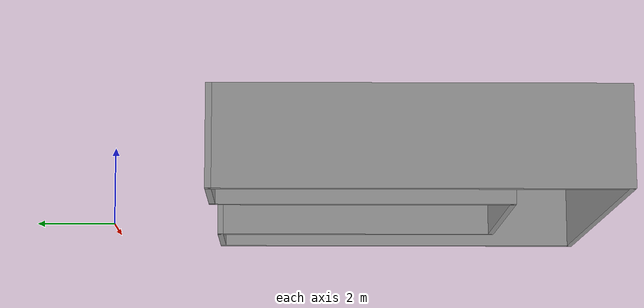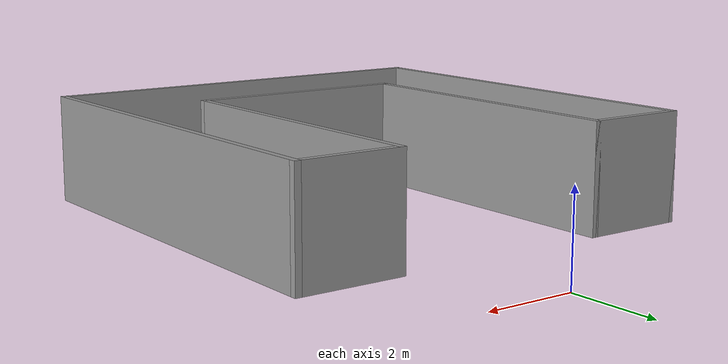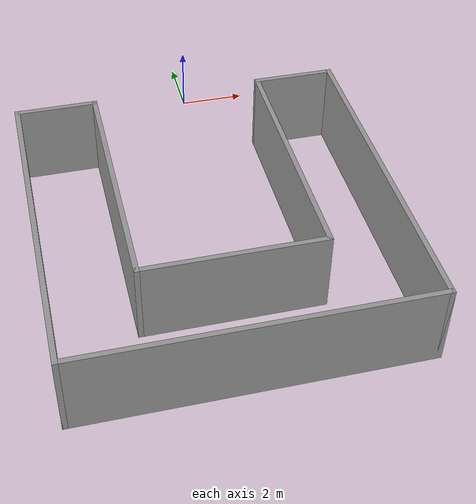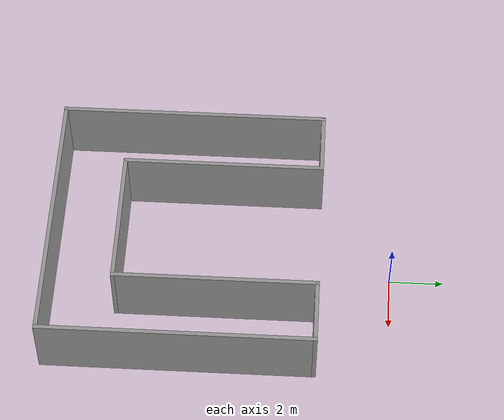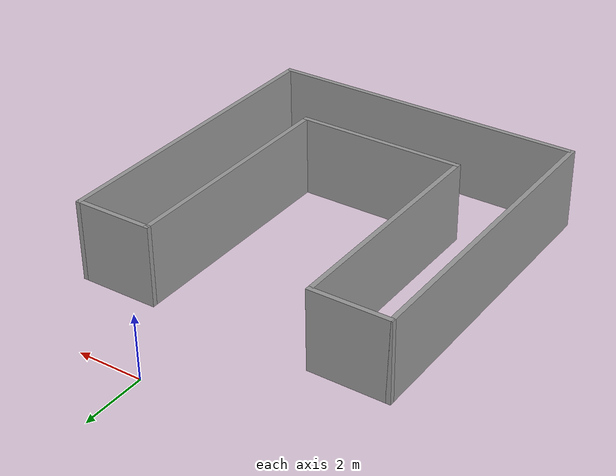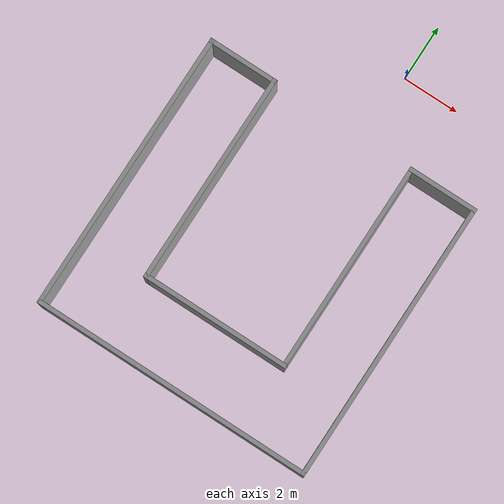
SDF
<?xml version='1.0'?>
<sdf version='1.6'>
  <model name='mybuilding'>
    <pose frame=''>-0.745 -6.3075 0 0 -0 0</pose>
    <link name='Wall_0'>
      <collision name='Wall_0_Collision'>
        <geometry>
          <box>
            <size>2.5 0.15 2.5</size>
          </box>
        </geometry>
        <pose frame=''>0 0 1.25 0 -0 0</pose>
      </collision>
      <visual name='Wall_0_Visual'>
        <pose frame=''>0 0 1.25 0 -0 0</pose>
        <geometry>
          <box>
            <size>2.5 0.15 2.5</size>
          </box>
        </geometry>
        <material>
          <script>
            <uri>file://media/materials/scripts/gazebo.material</uri>
            <name>Gazebo/Grey</name>
          </script>
          <ambient>1 1 1 1</ambient>
        </material>
        <meta>
          <layer>0</layer>
        </meta>
      </visual>
      <pose frame=''>-3.75 3.6175 0 0 -0 0</pose>
    </link>
    <link name='Wall_12'>
      <collision name='Wall_12_Collision'>
        <geometry>
          <box>
            <size>7.5 0.15 2.5</size>
          </box>
        </geometry>
        <pose frame=''>0 0 1.25 0 -0 0</pose>
      </collision>
      <visual name='Wall_12_Visual'>
        <pose frame=''>0 0 1.25 0 -0 0</pose>
        <geometry>
          <box>
            <size>7.5 0.15 2.5</size>
          </box>
        </geometry>
        <material>
          <script>
            <uri>file://media/materials/scripts/gazebo.material</uri>
            <name>Gazebo/Grey</name>
          </script>
          <ambient>1 1 1 1</ambient>
        </material>
        <meta>
          <layer>0</layer>
        </meta>
      </visual>
      <pose frame=''>2.575 -0.0575 0 0 -0 -1.5708</pose>
    </link>
    <link name='Wall_13'>
      <collision name='Wall_13_Collision'>
        <geometry>
          <box>
            <size>5.3 0.15 2.5</size>
          </box>
        </geometry>
        <pose frame=''>0 0 1.25 0 -0 0</pose>
      </collision>
      <visual name='Wall_13_Visual'>
        <pose frame=''>0 0 1.25 0 -0 0</pose>
        <geometry>
          <box>
            <size>5.3 0.15 2.5</size>
          </box>
        </geometry>
        <material>
          <script>
            <uri>file://media/materials/scripts/gazebo.material</uri>
            <name>Gazebo/Grey</name>
          </script>
          <ambient>1 1 1 1</ambient>
        </material>
        <meta>
          <layer>0</layer>
        </meta>
      </visual>
      <pose frame=''>0 -3.7325 0 0 -0 3.14159</pose>
    </link>
    <link name='Wall_4'>
      <collision name='Wall_4_Collision'>
        <geometry>
          <box>
            <size>10 0.15 2.5</size>
          </box>
        </geometry>
        <pose frame=''>0 0 1.25 0 -0 0</pose>
      </collision>
      <visual name='Wall_4_Visual'>
        <pose frame=''>0 0 1.25 0 -0 0</pose>
        <geometry>
          <box>
            <size>10 0.15 2.5</size>
          </box>
        </geometry>
        <material>
          <script>
            <uri>file://media/materials/scripts/gazebo.material</uri>
            <name>Gazebo/Grey</name>
          </script>
          <ambient>1 1 1 1</ambient>
        </material>
        <meta>
          <layer>0</layer>
        </meta>
      </visual>
      <pose frame=''>-4.925 -1.3075 0 0 -0 -1.5708</pose>
    </link>
    <link name='Wall_5'>
      <collision name='Wall_5_Collision'>
        <geometry>
          <box>
            <size>10 0.15 2.5</size>
          </box>
        </geometry>
        <pose frame=''>0 0 1.25 0 -0 0</pose>
      </collision>
      <visual name='Wall_5_Visual'>
        <pose frame=''>0 0 1.25 0 -0 0</pose>
        <geometry>
          <box>
            <size>10 0.15 2.5</size>
          </box>
        </geometry>
        <material>
          <script>
            <uri>file://media/materials/scripts/gazebo.material</uri>
            <name>Gazebo/Grey</name>
          </script>
          <ambient>1 1 1 1</ambient>
        </material>
        <meta>
          <layer>0</layer>
        </meta>
      </visual>
      <pose frame=''>0 -6.2325 0 0 -0 0</pose>
    </link>
    <link name='Wall_6'>
      <collision name='Wall_6_Collision'>
        <geometry>
          <box>
            <size>10 0.15 2.5</size>
          </box>
        </geometry>
        <pose frame=''>0 0 1.25 0 -0 0</pose>
      </collision>
      <visual name='Wall_6_Visual'>
        <pose frame=''>0 0 1.25 0 -0 0</pose>
        <geometry>
          <box>
            <size>10 0.15 2.5</size>
          </box>
        </geometry>
        <material>
          <script>
            <uri>file://media/materials/scripts/gazebo.material</uri>
            <name>Gazebo/Grey</name>
          </script>
          <ambient>1 1 1 1</ambient>
        </material>
        <meta>
          <layer>0</layer>
        </meta>
      </visual>
      <pose frame=''>4.925 -1.3075 0 0 -0 1.5708</pose>
    </link>
    <link name='Wall_7'>
      <collision name='Wall_7_Collision'>
        <geometry>
          <box>
            <size>2.5 0.15 2.5</size>
          </box>
        </geometry>
        <pose frame=''>0 0 1.25 0 -0 0</pose>
      </collision>
      <visual name='Wall_7_Visual'>
        <pose frame=''>0 0 1.25 0 -0 0</pose>
        <geometry>
          <box>
            <size>2.5 0.15 2.5</size>
          </box>
        </geometry>
        <material>
          <script>
            <uri>file://media/materials/scripts/gazebo.material</uri>
            <name>Gazebo/Grey</name>
          </script>
          <ambient>1 1 1 1</ambient>
        </material>
        <meta>
          <layer>0</layer>
        </meta>
      </visual>
      <pose frame=''>3.75 3.6175 0 0 -0 3.14159</pose>
    </link>
    <link name='Wall_9'>
      <collision name='Wall_9_Collision'>
        <geometry>
          <box>
            <size>7.5 0.15 2.5</size>
          </box>
        </geometry>
        <pose frame=''>0 0 1.25 0 -0 0</pose>
      </collision>
      <visual name='Wall_9_Visual'>
        <pose frame=''>0 0 1.25 0 -0 0</pose>
        <geometry>
          <box>
            <size>7.5 0.15 2.5</size>
          </box>
        </geometry>
        <material>
          <script>
            <uri>file://media/materials/scripts/gazebo.material</uri>
            <name>Gazebo/Grey</name>
          </script>
          <ambient>1 1 1 1</ambient>
        </material>
        <meta>
          <layer>0</layer>
        </meta>
      </visual>
      <pose frame=''>-2.575 -0.0575 0 0 -0 -1.5708</pose>
    </link>
    <static>1</static>
  </model>
</sdf>
